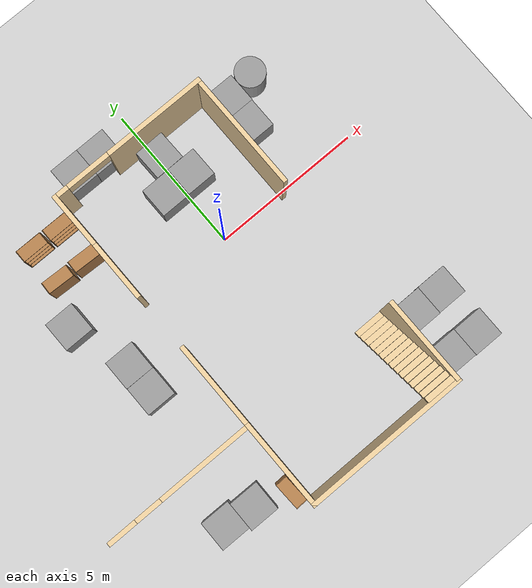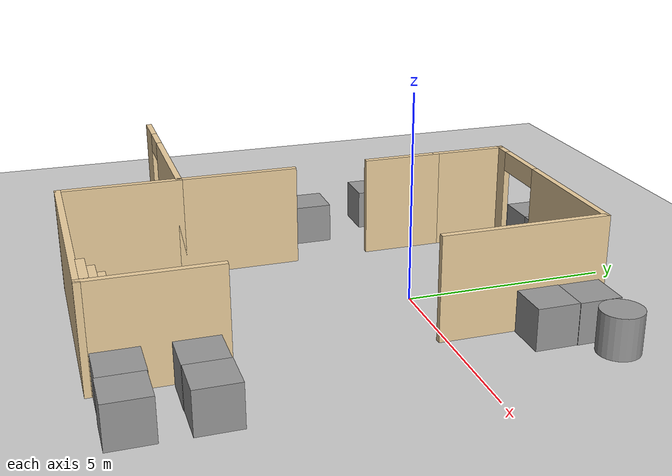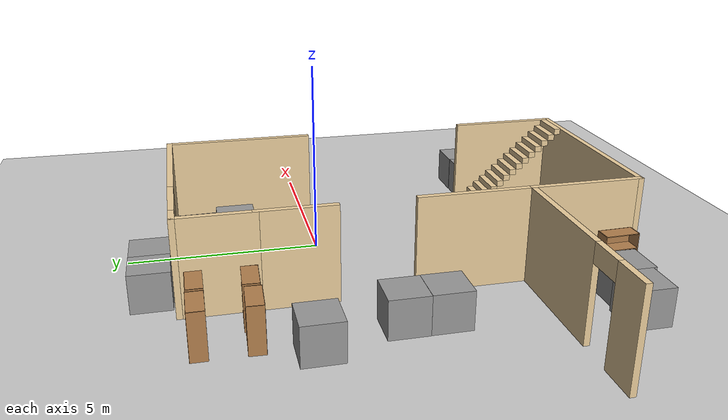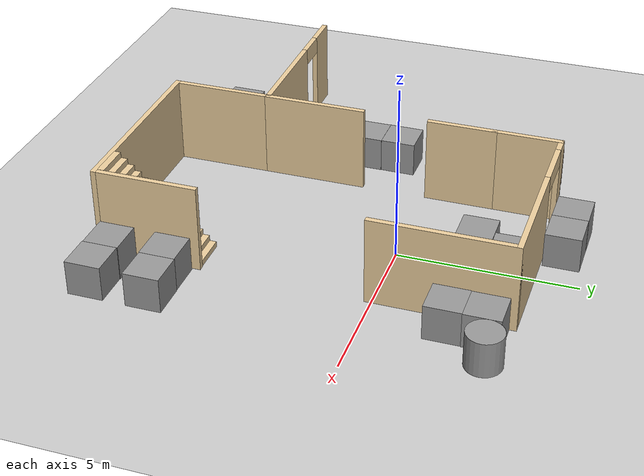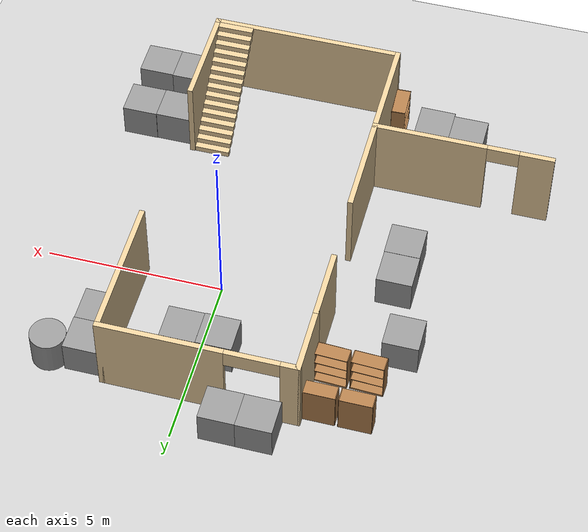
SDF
<sdf version="1.7">
 <world name="default">
  <model name="ground_plane">
   <static>1</static>
   <link name="link">
    <collision name="collision">
     <geometry><plane><normal>0 0 1</normal><size>100 100</size></plane></geometry>
     <surface>
      <contact><collide_bitmask>65535</collide_bitmask></contact>
      <friction><ode><mu>100</mu><mu2>50</mu2></ode></friction>
     </surface>
    </collision>
    <visual name="visual">
     <cast_shadows>0</cast_shadows>
     <geometry><plane><normal>0 0 1</normal><size>100 100</size></plane></geometry>
     <material>
      <script><uri>file://media/materials/scripts/gazebo.material</uri><name>Gazebo/Grey</name></script>
     </material>
    </visual>
   </link>
  </model>
  <model name="Health_2">
   <pose>1.45683 -1.97013 0 0 -0 0</pose>
   <link name="Stairs_1">
    <visual name="Stairs_1_Visual_0">
     <pose>0.20143 -2.88494 0.083333 0 -0 0</pose>
     <geometry><box><size>1 0.190191 0.166667</size></box></geometry>
     <material>
      <script><uri>file://media/materials/scripts/gazebo.material</uri><name>Gazebo/Grey</name></script>
      <ambient>0.921569 0.807843 0.615686 1</ambient>
     </material>
     <meta><layer>0</layer></meta>
    </visual>
    <collision name="Stairs_1_Collision_0">
     <geometry><box><size>1 0.190191 0.166667</size></box></geometry>
     <pose>0.20143 -2.88494 0.083333 0 -0 0</pose>
    </collision>
    <visual name="Stairs_1_Visual_1">
     <pose>0.20143 -3.07513 0.25 0 -0 0</pose>
     <geometry><box><size>1 0.190191 0.166667</size></box></geometry>
     <material>
      <script><uri>file://media/materials/scripts/gazebo.material</uri><name>Gazebo/Grey</name></script>
      <ambient>0.921569 0.807843 0.615686 1</ambient>
     </material>
     <meta><layer>0</layer></meta>
    </visual>
    <collision name="Stairs_1_Collision_1">
     <geometry><box><size>1 0.190191 0.166667</size></box></geometry>
     <pose>0.20143 -3.07513 0.25 0 -0 0</pose>
    </collision>
    <visual name="Stairs_1_Visual_2">
     <pose>0.20143 -3.26532 0.416667 0 -0 0</pose>
     <geometry><box><size>1 0.190191 0.166667</size></box></geometry>
     <material>
      <script><uri>file://media/materials/scripts/gazebo.material</uri><name>Gazebo/Grey</name></script>
      <ambient>0.921569 0.807843 0.615686 1</ambient>
     </material>
     <meta><layer>0</layer></meta>
    </visual>
    <collision name="Stairs_1_Collision_2">
     <geometry><box><size>1 0.190191 0.166667</size></box></geometry>
     <pose>0.20143 -3.26532 0.416667 0 -0 0</pose>
    </collision>
    <visual name="Stairs_1_Visual_3">
     <pose>0.20143 -3.45552 0.583333 0 -0 0</pose>
     <geometry><box><size>1 0.190191 0.166667</size></box></geometry>
     <material>
      <script><uri>file://media/materials/scripts/gazebo.material</uri><name>Gazebo/Grey</name></script>
      <ambient>0.921569 0.807843 0.615686 1</ambient>
     </material>
     <meta><layer>0</layer></meta>
    </visual>
    <collision name="Stairs_1_Collision_3">
     <geometry><box><size>1 0.190191 0.166667</size></box></geometry>
     <pose>0.20143 -3.45552 0.583333 0 -0 0</pose>
    </collision>
    <visual name="Stairs_1_Visual_4">
     <pose>0.20143 -3.64571 0.75 0 -0 0</pose>
     <geometry><box><size>1 0.190191 0.166667</size></box></geometry>
     <material>
      <script><uri>file://media/materials/scripts/gazebo.material</uri><name>Gazebo/Grey</name></script>
      <ambient>0.921569 0.807843 0.615686 1</ambient>
     </material>
     <meta><layer>0</layer></meta>
    </visual>
    <collision name="Stairs_1_Collision_4">
     <geometry><box><size>1 0.190191 0.166667</size></box></geometry>
     <pose>0.20143 -3.64571 0.75 0 -0 0</pose>
    </collision>
    <visual name="Stairs_1_Visual_5">
     <pose>0.20143 -3.8359 0.916667 0 -0 0</pose>
     <geometry><box><size>1 0.190191 0.166667</size></box></geometry>
     <material>
      <script><uri>file://media/materials/scripts/gazebo.material</uri><name>Gazebo/Grey</name></script>
      <ambient>0.921569 0.807843 0.615686 1</ambient>
     </material>
     <meta><layer>0</layer></meta>
    </visual>
    <collision name="Stairs_1_Collision_5">
     <geometry><box><size>1 0.190191 0.166667</size></box></geometry>
     <pose>0.20143 -3.8359 0.916667 0 -0 0</pose>
    </collision>
    <visual name="Stairs_1_Visual_6">
     <pose>0.20143 -4.02609 1.08333 0 -0 0</pose>
     <geometry><box><size>1 0.190191 0.166667</size></box></geometry>
     <material>
      <script><uri>file://media/materials/scripts/gazebo.material</uri><name>Gazebo/Grey</name></script>
      <ambient>0.921569 0.807843 0.615686 1</ambient>
     </material>
     <meta><layer>0</layer></meta>
    </visual>
    <collision name="Stairs_1_Collision_6">
     <geometry><box><size>1 0.190191 0.166667</size></box></geometry>
     <pose>0.20143 -4.02609 1.08333 0 -0 0</pose>
    </collision>
    <visual name="Stairs_1_Visual_7">
     <pose>0.20143 -4.21628 1.25 0 -0 0</pose>
     <geometry><box><size>1 0.190191 0.166667</size></box></geometry>
     <material>
      <script><uri>file://media/materials/scripts/gazebo.material</uri><name>Gazebo/Grey</name></script>
      <ambient>0.921569 0.807843 0.615686 1</ambient>
     </material>
     <meta><layer>0</layer></meta>
    </visual>
    <collision name="Stairs_1_Collision_7">
     <geometry><box><size>1 0.190191 0.166667</size></box></geometry>
     <pose>0.20143 -4.21628 1.25 0 -0 0</pose>
    </collision>
    <visual name="Stairs_1_Visual_8">
     <pose>0.20143 -4.40647 1.41667 0 -0 0</pose>
     <geometry><box><size>1 0.190191 0.166667</size></box></geometry>
     <material>
      <script><uri>file://media/materials/scripts/gazebo.material</uri><name>Gazebo/Grey</name></script>
      <ambient>0.921569 0.807843 0.615686 1</ambient>
     </material>
     <meta><layer>0</layer></meta>
    </visual>
    <collision name="Stairs_1_Collision_8">
     <geometry><box><size>1 0.190191 0.166667</size></box></geometry>
     <pose>0.20143 -4.40647 1.41667 0 -0 0</pose>
    </collision>
    <visual name="Stairs_1_Visual_9">
     <pose>0.20143 -4.59666 1.58333 0 -0 0</pose>
     <geometry><box><size>1 0.190191 0.166667</size></box></geometry>
     <material>
      <script><uri>file://media/materials/scripts/gazebo.material</uri><name>Gazebo/Grey</name></script>
      <ambient>0.921569 0.807843 0.615686 1</ambient>
     </material>
     <meta><layer>0</layer></meta>
    </visual>
    <collision name="Stairs_1_Collision_9">
     <geometry><box><size>1 0.190191 0.166667</size></box></geometry>
     <pose>0.20143 -4.59666 1.58333 0 -0 0</pose>
    </collision>
    <visual name="Stairs_1_Visual_10">
     <pose>0.20143 -4.78685 1.75 0 -0 0</pose>
     <geometry><box><size>1 0.190191 0.166667</size></box></geometry>
     <material>
      <script><uri>file://media/materials/scripts/gazebo.material</uri><name>Gazebo/Grey</name></script>
      <ambient>0.921569 0.807843 0.615686 1</ambient>
     </material>
     <meta><layer>0</layer></meta>
    </visual>
    <collision name="Stairs_1_Collision_10">
     <geometry><box><size>1 0.190191 0.166667</size></box></geometry>
     <pose>0.20143 -4.78685 1.75 0 -0 0</pose>
    </collision>
    <visual name="Stairs_1_Visual_11">
     <pose>0.20143 -4.97705 1.91667 0 -0 0</pose>
     <geometry><box><size>1 0.190191 0.166667</size></box></geometry>
     <material>
      <script><uri>file://media/materials/scripts/gazebo.material</uri><name>Gazebo/Grey</name></script>
      <ambient>0.921569 0.807843 0.615686 1</ambient>
     </material>
     <meta><layer>0</layer></meta>
    </visual>
    <collision name="Stairs_1_Collision_11">
     <geometry><box><size>1 0.190191 0.166667</size></box></geometry>
     <pose>0.20143 -4.97705 1.91667 0 -0 0</pose>
    </collision>
    <visual name="Stairs_1_Visual_12">
     <pose>0.20143 -5.16724 2.08333 0 -0 0</pose>
     <geometry><box><size>1 0.190191 0.166667</size></box></geometry>
     <material>
      <script><uri>file://media/materials/scripts/gazebo.material</uri><name>Gazebo/Grey</name></script>
      <ambient>0.921569 0.807843 0.615686 1</ambient>
     </material>
     <meta><layer>0</layer></meta>
    </visual>
    <collision name="Stairs_1_Collision_12">
     <geometry><box><size>1 0.190191 0.166667</size></box></geometry>
     <pose>0.20143 -5.16724 2.08333 0 -0 0</pose>
    </collision>
    <visual name="Stairs_1_Visual_13">
     <pose>0.20143 -5.35743 2.25 0 -0 0</pose>
     <geometry><box><size>1 0.190191 0.166667</size></box></geometry>
     <material>
      <script><uri>file://media/materials/scripts/gazebo.material</uri><name>Gazebo/Grey</name></script>
      <ambient>0.921569 0.807843 0.615686 1</ambient>
     </material>
     <meta><layer>0</layer></meta>
    </visual>
    <collision name="Stairs_1_Collision_13">
     <geometry><box><size>1 0.190191 0.166667</size></box></geometry>
     <pose>0.20143 -5.35743 2.25 0 -0 0</pose>
    </collision>
    <visual name="Stairs_1_Visual_14">
     <pose>0.20143 -5.54762 2.41667 0 -0 0</pose>
     <geometry><box><size>1 0.190191 0.166667</size></box></geometry>
     <material>
      <script><uri>file://media/materials/scripts/gazebo.material</uri><name>Gazebo/Grey</name></script>
      <ambient>0.921569 0.807843 0.615686 1</ambient>
     </material>
     <meta><layer>0</layer></meta>
    </visual>
    <collision name="Stairs_1_Collision_14">
     <geometry><box><size>1 0.190191 0.166667</size></box></geometry>
     <pose>0.20143 -5.54762 2.41667 0 -0 0</pose>
    </collision>
   </link>
   <link name="Wall_122">
    <collision name="Wall_122_Collision">
     <geometry><box><size>2 0.15 2.5</size></box></geometry>
     <pose>0 0 1.25 0 -0 0</pose>
    </collision>
    <visual name="Wall_122_Visual">
     <pose>0 0 1.25 0 -0 0</pose>
     <geometry><box><size>2 0.15 2.5</size></box></geometry>
     <material>
      <script><uri>file://media/materials/scripts/gazebo.material</uri><name>Gazebo/Grey</name></script>
      <ambient>0.921569 0.807843 0.615686 1</ambient>
     </material>
     <meta><layer>0</layer></meta>
    </visual>
    <pose>-4.59236 4.775 0 0 -0 -1.5708</pose>
   </link>
   <link name="Wall_125">
    <collision name="Wall_125_Collision">
     <geometry><box><size>2 0.15 2.5</size></box></geometry>
     <pose>0 0 1.25 0 -0 0</pose>
    </collision>
    <visual name="Wall_125_Visual">
     <pose>0 0 1.25 0 -0 0</pose>
     <geometry><box><size>2 0.15 2.5</size></box></geometry>
     <material>
      <script><uri>file://media/materials/scripts/gazebo.material</uri><name>Gazebo/Grey</name></script>
      <ambient>0.921569 0.807843 0.615686 1</ambient>
     </material>
     <meta><layer>0</layer></meta>
    </visual>
    <pose>-4.59236 2.925 0 0 -0 -1.5708</pose>
   </link>
   <link name="Wall_127">
    <collision name="Wall_127_Collision">
     <geometry><box><size>3 0.15 2.5</size></box></geometry>
     <pose>0 0 1.25 0 -0 0</pose>
    </collision>
    <visual name="Wall_127_Visual">
     <pose>0 0 1.25 0 -0 0</pose>
     <geometry><box><size>3 0.15 2.5</size></box></geometry>
     <material>
      <script><uri>file://media/materials/scripts/gazebo.material</uri><name>Gazebo/Grey</name></script>
      <ambient>0.921569 0.807843 0.615686 1</ambient>
     </material>
     <meta><layer>0</layer></meta>
    </visual>
    <pose>-4.56923 -1.425 0 0 -0 1.5708</pose>
   </link>
   <link name="Wall_138">
    <pose>-1.91736 5.7 0 0 -0 0</pose>
    <visual name="Wall_138_Visual_0">
     <pose>-2.48035 0 1.25 0 -0 0</pose>
     <geometry><box><size>0.539308 0.15 2.5</size></box></geometry>
     <material>
      <script><uri>file://media/materials/scripts/gazebo.material</uri><name>Gazebo/Grey</name></script>
      <ambient>0.921569 0.807843 0.615686 1</ambient>
     </material>
     <meta><layer>0</layer></meta>
    </visual>
    <collision name="Wall_138_Collision_0">
     <geometry><box><size>0.539308 0.15 2.5</size></box></geometry>
     <pose>-2.48035 0 1.25 0 -0 0</pose>
    </collision>
    <visual name="Wall_138_Visual_1">
     <pose>1.01965 0 1.25 0 -0 0</pose>
     <geometry><box><size>3.46069 0.15 2.5</size></box></geometry>
     <material>
      <script><uri>file://media/materials/scripts/gazebo.material</uri><name>Gazebo/Grey</name></script>
      <ambient>0.921569 0.807843 0.615686 1</ambient>
     </material>
     <meta><layer>0</layer></meta>
    </visual>
    <collision name="Wall_138_Collision_1">
     <geometry><box><size>3.46069 0.15 2.5</size></box></geometry>
     <pose>1.01965 0 1.25 0 -0 0</pose>
    </collision>
    <visual name="Wall_138_Visual_2">
     <pose>-1.46069 0 2.25 0 -0 0</pose>
     <geometry><box><size>1.5 0.15 0.5</size></box></geometry>
     <material>
      <script><uri>file://media/materials/scripts/gazebo.material</uri><name>Gazebo/Grey</name></script>
      <ambient>0.921569 0.807843 0.615686 1</ambient>
     </material>
     <meta><layer>0</layer></meta>
    </visual>
    <collision name="Wall_138_Collision_2">
     <geometry><box><size>1.5 0.15 0.5</size></box></geometry>
     <pose>-1.46069 0 2.25 0 -0 0</pose>
    </collision>
   </link>
   <link name="Wall_140">
    <collision name="Wall_140_Collision">
     <geometry><box><size>4 0.15 2.5</size></box></geometry>
     <pose>0 0 1.25 0 -0 0</pose>
    </collision>
    <visual name="Wall_140_Visual">
     <pose>0 0 1.25 0 -0 0</pose>
     <geometry><box><size>4 0.15 2.5</size></box></geometry>
     <material>
      <script><uri>file://media/materials/scripts/gazebo.material</uri><name>Gazebo/Grey</name></script>
      <ambient>0.921569 0.807843 0.615686 1</ambient>
     </material>
     <meta><layer>0</layer></meta>
    </visual>
    <pose>0.757639 3.775 0 0 -0 -1.5708</pose>
   </link>
   <link name="Wall_32">
    <pose>-7.06923 -2.85 0 0 -0 0</pose>
    <visual name="Wall_32_Visual_0">
     <pose>-2.08046 0 1.25 0 -0 0</pose>
     <geometry><box><size>0.98908 0.15 2.5</size></box></geometry>
     <material>
      <script><uri>file://media/materials/scripts/gazebo.material</uri><name>Gazebo/Grey</name></script>
      <ambient>0.921569 0.807843 0.615686 1</ambient>
     </material>
     <meta><layer>0</layer></meta>
    </visual>
    <collision name="Wall_32_Collision_0">
     <geometry><box><size>0.98908 0.15 2.5</size></box></geometry>
     <pose>-2.08046 0 1.25 0 -0 0</pose>
    </collision>
    <visual name="Wall_32_Visual_1">
     <pose>0.94454 0 1.25 0 -0 0</pose>
     <geometry><box><size>3.26092 0.15 2.5</size></box></geometry>
     <material>
      <script><uri>file://media/materials/scripts/gazebo.material</uri><name>Gazebo/Grey</name></script>
      <ambient>0.921569 0.807843 0.615686 1</ambient>
     </material>
     <meta><layer>0</layer></meta>
    </visual>
    <collision name="Wall_32_Collision_1">
     <geometry><box><size>3.26092 0.15 2.5</size></box></geometry>
     <pose>0.94454 0 1.25 0 -0 0</pose>
    </collision>
    <visual name="Wall_32_Visual_2">
     <pose>-1.13592 0 2.25 0 -0 0</pose>
     <geometry><box><size>0.9 0.15 0.5</size></box></geometry>
     <material>
      <script><uri>file://media/materials/scripts/gazebo.material</uri><name>Gazebo/Grey</name></script>
      <ambient>0.921569 0.807843 0.615686 1</ambient>
     </material>
     <meta><layer>0</layer></meta>
    </visual>
    <collision name="Wall_32_Collision_2">
     <geometry><box><size>0.9 0.15 0.5</size></box></geometry>
     <pose>-1.13592 0 2.25 0 -0 0</pose>
    </collision>
   </link>
   <link name="Wall_33">
    <collision name="Wall_33_Collision">
     <geometry><box><size>3 0.15 2.5</size></box></geometry>
     <pose>0 0 1.25 0 -0 0</pose>
    </collision>
    <visual name="Wall_33_Visual">
     <pose>0 0 1.25 0 -0 0</pose>
     <geometry><box><size>3 0.15 2.5</size></box></geometry>
     <material>
      <script><uri>file://media/materials/scripts/gazebo.material</uri><name>Gazebo/Grey</name></script>
      <ambient>0.921569 0.807843 0.615686 1</ambient>
     </material>
     <meta><layer>0</layer></meta>
    </visual>
    <pose>-4.56923 -4.275 0 0 -0 -1.5708</pose>
   </link>
   <link name="Wall_50">
    <collision name="Wall_50_Collision">
     <geometry><box><size>5.50015 0.15 2.5</size></box></geometry>
     <pose>0 0 1.25 0 -0 0</pose>
    </collision>
    <visual name="Wall_50_Visual">
     <pose>0 0 1.25 0 -0 0</pose>
     <geometry><box><size>5.50015 0.15 2.5</size></box></geometry>
     <material>
      <script><uri>file://media/materials/scripts/gazebo.material</uri><name>Gazebo/Grey</name></script>
      <ambient>0.921569 0.807843 0.615686 1</ambient>
     </material>
     <meta><layer>0</layer></meta>
    </visual>
    <pose>-1.89423 -5.7 0 0 -0 0</pose>
   </link>
   <link name="Wall_51">
    <collision name="Wall_51_Collision">
     <geometry><box><size>3 0.15 2.5</size></box></geometry>
     <pose>0 0 1.25 0 -0 0</pose>
    </collision>
    <visual name="Wall_51_Visual">
     <pose>0 0 1.25 0 -0 0</pose>
     <geometry><box><size>3 0.15 2.5</size></box></geometry>
     <material>
      <script><uri>file://media/materials/scripts/gazebo.material</uri><name>Gazebo/Grey</name></script>
      <ambient>0.921569 0.807843 0.615686 1</ambient>
     </material>
     <meta><layer>0</layer></meta>
    </visual>
    <pose>0.78077 -4.275 0 0 -0 1.5708</pose>
   </link>
   <static>1</static>
  </model>
  <model name="bookshelf">
   <static>1</static>
   <link name="link">
    <inertial><mass>1</mass></inertial>
    <collision name="back">
     <pose>0 0.005 0.6 0 -0 0</pose>
     <geometry><box><size>0.9 0.01 1.2</size></box></geometry>
    </collision>
    <visual name="visual1">
     <pose>0 0.005 0.6 0 -0 0</pose>
     <geometry><box><size>0.9 0.01 1.2</size></box></geometry>
     <material>
      <script><uri>file://media/materials/scripts/gazebo.material</uri><name>Gazebo/Wood</name></script>
     </material>
    </visual>
    <collision name="left_side">
     <pose>0.45 -0.195 0.6 0 -0 0</pose>
     <geometry><box><size>0.02 0.4 1.2</size></box></geometry>
    </collision>
    <visual name="visual2">
     <pose>0.45 -0.195 0.6 0 -0 0</pose>
     <geometry><box><size>0.02 0.4 1.2</size></box></geometry>
     <material>
      <script><uri>file://media/materials/scripts/gazebo.material</uri><name>Gazebo/Wood</name></script>
     </material>
    </visual>
    <collision name="right_side">
     <pose>-0.45 -0.195 0.6 0 -0 0</pose>
     <geometry><box><size>0.02 0.4 1.2</size></box></geometry>
    </collision>
    <visual name="visual3">
     <pose>-0.45 -0.195 0.6 0 -0 0</pose>
     <geometry><box><size>0.02 0.4 1.2</size></box></geometry>
     <material>
      <script><uri>file://media/materials/scripts/gazebo.material</uri><name>Gazebo/Wood</name></script>
     </material>
    </visual>
    <collision name="bottom">
     <pose>0 -0.195 0.03 0 -0 0</pose>
     <geometry><box><size>0.88 0.4 0.06</size></box></geometry>
    </collision>
    <visual name="visual4">
     <pose>0 -0.195 0.03 0 -0 0</pose>
     <geometry><box><size>0.88 0.4 0.06</size></box></geometry>
     <material>
      <script><uri>file://media/materials/scripts/gazebo.material</uri><name>Gazebo/Wood</name></script>
     </material>
    </visual>
    <collision name="top">
     <pose>0 -0.195 1.19 0 -0 0</pose>
     <geometry><box><size>0.88 0.4 0.02</size></box></geometry>
    </collision>
    <visual name="visual5">
     <pose>0 -0.195 1.19 0 -0 0</pose>
     <geometry><box><size>0.88 0.4 0.02</size></box></geometry>
     <material>
      <script><uri>file://media/materials/scripts/gazebo.material</uri><name>Gazebo/Wood</name></script>
     </material>
    </visual>
    <collision name="low_shelf">
     <pose>0 -0.195 0.43 0 -0 0</pose>
     <geometry><box><size>0.88 0.4 0.02</size></box></geometry>
    </collision>
    <visual name="visual6">
     <pose>0 -0.195 0.43 0 -0 0</pose>
     <geometry><box><size>0.88 0.4 0.02</size></box></geometry>
     <material>
      <script><uri>file://media/materials/scripts/gazebo.material</uri><name>Gazebo/Wood</name></script>
     </material>
    </visual>
    <collision name="high_shelf">
     <pose>0 -0.195 0.8 0 -0 0</pose>
     <geometry><box><size>0.88 0.4 0.02</size></box></geometry>
    </collision>
    <visual name="visual7">
     <pose>0 -0.195 0.8 0 -0 0</pose>
     <geometry><box><size>0.88 0.4 0.02</size></box></geometry>
     <material>
      <script><uri>file://media/materials/scripts/gazebo.material</uri><name>Gazebo/Wood</name></script>
     </material>
    </visual>
   </link>
   <pose>-3.62888 3.55135 0 0 -0 0</pose>
  </model>
  <model name="bookshelf_0">
   <static>1</static>
   <link name="link">
    <inertial><mass>1</mass></inertial>
    <collision name="back">
     <pose>0 0.005 0.6 0 -0 0</pose>
     <geometry><box><size>0.9 0.01 1.2</size></box></geometry>
    </collision>
    <visual name="visual1">
     <pose>0 0.005 0.6 0 -0 0</pose>
     <geometry><box><size>0.9 0.01 1.2</size></box></geometry>
     <material>
      <script><uri>file://media/materials/scripts/gazebo.material</uri><name>Gazebo/Wood</name></script>
     </material>
    </visual>
    <collision name="left_side">
     <pose>0.45 -0.195 0.6 0 -0 0</pose>
     <geometry><box><size>0.02 0.4 1.2</size></box></geometry>
    </collision>
    <visual name="visual2">
     <pose>0.45 -0.195 0.6 0 -0 0</pose>
     <geometry><box><size>0.02 0.4 1.2</size></box></geometry>
     <material>
      <script><uri>file://media/materials/scripts/gazebo.material</uri><name>Gazebo/Wood</name></script>
     </material>
    </visual>
    <collision name="right_side">
     <pose>-0.45 -0.195 0.6 0 -0 0</pose>
     <geometry><box><size>0.02 0.4 1.2</size></box></geometry>
    </collision>
    <visual name="visual3">
     <pose>-0.45 -0.195 0.6 0 -0 0</pose>
     <geometry><box><size>0.02 0.4 1.2</size></box></geometry>
     <material>
      <script><uri>file://media/materials/scripts/gazebo.material</uri><name>Gazebo/Wood</name></script>
     </material>
    </visual>
    <collision name="bottom">
     <pose>0 -0.195 0.03 0 -0 0</pose>
     <geometry><box><size>0.88 0.4 0.06</size></box></geometry>
    </collision>
    <visual name="visual4">
     <pose>0 -0.195 0.03 0 -0 0</pose>
     <geometry><box><size>0.88 0.4 0.06</size></box></geometry>
     <material>
      <script><uri>file://media/materials/scripts/gazebo.material</uri><name>Gazebo/Wood</name></script>
     </material>
    </visual>
    <collision name="top">
     <pose>0 -0.195 1.19 0 -0 0</pose>
     <geometry><box><size>0.88 0.4 0.02</size></box></geometry>
    </collision>
    <visual name="visual5">
     <pose>0 -0.195 1.19 0 -0 0</pose>
     <geometry><box><size>0.88 0.4 0.02</size></box></geometry>
     <material>
      <script><uri>file://media/materials/scripts/gazebo.material</uri><name>Gazebo/Wood</name></script>
     </material>
    </visual>
    <collision name="low_shelf">
     <pose>0 -0.195 0.43 0 -0 0</pose>
     <geometry><box><size>0.88 0.4 0.02</size></box></geometry>
    </collision>
    <visual name="visual6">
     <pose>0 -0.195 0.43 0 -0 0</pose>
     <geometry><box><size>0.88 0.4 0.02</size></box></geometry>
     <material>
      <script><uri>file://media/materials/scripts/gazebo.material</uri><name>Gazebo/Wood</name></script>
     </material>
    </visual>
    <collision name="high_shelf">
     <pose>0 -0.195 0.8 0 -0 0</pose>
     <geometry><box><size>0.88 0.4 0.02</size></box></geometry>
    </collision>
    <visual name="visual7">
     <pose>0 -0.195 0.8 0 -0 0</pose>
     <geometry><box><size>0.88 0.4 0.02</size></box></geometry>
     <material>
      <script><uri>file://media/materials/scripts/gazebo.material</uri><name>Gazebo/Wood</name></script>
     </material>
    </visual>
   </link>
   <pose>-4.62225 3.55775 0 0 -0 0</pose>
  </model>
  <model name="bookshelf_2">
   <static>1</static>
   <link name="link">
    <inertial><mass>1</mass></inertial>
    <collision name="back">
     <pose>0 0.005 0.6 0 -0 0</pose>
     <geometry><box><size>0.9 0.01 1.2</size></box></geometry>
    </collision>
    <visual name="visual1">
     <pose>0 0.005 0.6 0 -0 0</pose>
     <geometry><box><size>0.9 0.01 1.2</size></box></geometry>
     <material>
      <script><uri>file://media/materials/scripts/gazebo.material</uri><name>Gazebo/Wood</name></script>
     </material>
    </visual>
    <collision name="left_side">
     <pose>0.45 -0.195 0.6 0 -0 0</pose>
     <geometry><box><size>0.02 0.4 1.2</size></box></geometry>
    </collision>
    <visual name="visual2">
     <pose>0.45 -0.195 0.6 0 -0 0</pose>
     <geometry><box><size>0.02 0.4 1.2</size></box></geometry>
     <material>
      <script><uri>file://media/materials/scripts/gazebo.material</uri><name>Gazebo/Wood</name></script>
     </material>
    </visual>
    <collision name="right_side">
     <pose>-0.45 -0.195 0.6 0 -0 0</pose>
     <geometry><box><size>0.02 0.4 1.2</size></box></geometry>
    </collision>
    <visual name="visual3">
     <pose>-0.45 -0.195 0.6 0 -0 0</pose>
     <geometry><box><size>0.02 0.4 1.2</size></box></geometry>
     <material>
      <script><uri>file://media/materials/scripts/gazebo.material</uri><name>Gazebo/Wood</name></script>
     </material>
    </visual>
    <collision name="bottom">
     <pose>0 -0.195 0.03 0 -0 0</pose>
     <geometry><box><size>0.88 0.4 0.06</size></box></geometry>
    </collision>
    <visual name="visual4">
     <pose>0 -0.195 0.03 0 -0 0</pose>
     <geometry><box><size>0.88 0.4 0.06</size></box></geometry>
     <material>
      <script><uri>file://media/materials/scripts/gazebo.material</uri><name>Gazebo/Wood</name></script>
     </material>
    </visual>
    <collision name="top">
     <pose>0 -0.195 1.19 0 -0 0</pose>
     <geometry><box><size>0.88 0.4 0.02</size></box></geometry>
    </collision>
    <visual name="visual5">
     <pose>0 -0.195 1.19 0 -0 0</pose>
     <geometry><box><size>0.88 0.4 0.02</size></box></geometry>
     <material>
      <script><uri>file://media/materials/scripts/gazebo.material</uri><name>Gazebo/Wood</name></script>
     </material>
    </visual>
    <collision name="low_shelf">
     <pose>0 -0.195 0.43 0 -0 0</pose>
     <geometry><box><size>0.88 0.4 0.02</size></box></geometry>
    </collision>
    <visual name="visual6">
     <pose>0 -0.195 0.43 0 -0 0</pose>
     <geometry><box><size>0.88 0.4 0.02</size></box></geometry>
     <material>
      <script><uri>file://media/materials/scripts/gazebo.material</uri><name>Gazebo/Wood</name></script>
     </material>
    </visual>
    <collision name="high_shelf">
     <pose>0 -0.195 0.8 0 -0 0</pose>
     <geometry><box><size>0.88 0.4 0.02</size></box></geometry>
    </collision>
    <visual name="visual7">
     <pose>0 -0.195 0.8 0 -0 0</pose>
     <geometry><box><size>0.88 0.4 0.02</size></box></geometry>
     <material>
      <script><uri>file://media/materials/scripts/gazebo.material</uri><name>Gazebo/Wood</name></script>
     </material>
    </visual>
   </link>
   <pose>-3.66454 1.91785 0 0 -0 3.1</pose>
  </model>
  <model name="bookshelf_3">
   <static>1</static>
   <link name="link">
    <inertial><mass>1</mass></inertial>
    <collision name="back">
     <pose>0 0.005 0.6 0 -0 0</pose>
     <geometry><box><size>0.9 0.01 1.2</size></box></geometry>
    </collision>
    <visual name="visual1">
     <pose>0 0.005 0.6 0 -0 0</pose>
     <geometry><box><size>0.9 0.01 1.2</size></box></geometry>
     <material>
      <script><uri>file://media/materials/scripts/gazebo.material</uri><name>Gazebo/Wood</name></script>
     </material>
    </visual>
    <collision name="left_side">
     <pose>0.45 -0.195 0.6 0 -0 0</pose>
     <geometry><box><size>0.02 0.4 1.2</size></box></geometry>
    </collision>
    <visual name="visual2">
     <pose>0.45 -0.195 0.6 0 -0 0</pose>
     <geometry><box><size>0.02 0.4 1.2</size></box></geometry>
     <material>
      <script><uri>file://media/materials/scripts/gazebo.material</uri><name>Gazebo/Wood</name></script>
     </material>
    </visual>
    <collision name="right_side">
     <pose>-0.45 -0.195 0.6 0 -0 0</pose>
     <geometry><box><size>0.02 0.4 1.2</size></box></geometry>
    </collision>
    <visual name="visual3">
     <pose>-0.45 -0.195 0.6 0 -0 0</pose>
     <geometry><box><size>0.02 0.4 1.2</size></box></geometry>
     <material>
      <script><uri>file://media/materials/scripts/gazebo.material</uri><name>Gazebo/Wood</name></script>
     </material>
    </visual>
    <collision name="bottom">
     <pose>0 -0.195 0.03 0 -0 0</pose>
     <geometry><box><size>0.88 0.4 0.06</size></box></geometry>
    </collision>
    <visual name="visual4">
     <pose>0 -0.195 0.03 0 -0 0</pose>
     <geometry><box><size>0.88 0.4 0.06</size></box></geometry>
     <material>
      <script><uri>file://media/materials/scripts/gazebo.material</uri><name>Gazebo/Wood</name></script>
     </material>
    </visual>
    <collision name="top">
     <pose>0 -0.195 1.19 0 -0 0</pose>
     <geometry><box><size>0.88 0.4 0.02</size></box></geometry>
    </collision>
    <visual name="visual5">
     <pose>0 -0.195 1.19 0 -0 0</pose>
     <geometry><box><size>0.88 0.4 0.02</size></box></geometry>
     <material>
      <script><uri>file://media/materials/scripts/gazebo.material</uri><name>Gazebo/Wood</name></script>
     </material>
    </visual>
    <collision name="low_shelf">
     <pose>0 -0.195 0.43 0 -0 0</pose>
     <geometry><box><size>0.88 0.4 0.02</size></box></geometry>
    </collision>
    <visual name="visual6">
     <pose>0 -0.195 0.43 0 -0 0</pose>
     <geometry><box><size>0.88 0.4 0.02</size></box></geometry>
     <material>
      <script><uri>file://media/materials/scripts/gazebo.material</uri><name>Gazebo/Wood</name></script>
     </material>
    </visual>
    <collision name="high_shelf">
     <pose>0 -0.195 0.8 0 -0 0</pose>
     <geometry><box><size>0.88 0.4 0.02</size></box></geometry>
    </collision>
    <visual name="visual7">
     <pose>0 -0.195 0.8 0 -0 0</pose>
     <geometry><box><size>0.88 0.4 0.02</size></box></geometry>
     <material>
      <script><uri>file://media/materials/scripts/gazebo.material</uri><name>Gazebo/Wood</name></script>
     </material>
    </visual>
   </link>
   <pose>-4.65456 1.92895 0 0 -0 3.1</pose>
  </model>
  <model name="bookshelf_6">
   <static>1</static>
   <link name="link">
    <inertial><mass>1</mass></inertial>
    <collision name="back">
     <pose>0 0.005 0.6 0 -0 0</pose>
     <geometry><box><size>0.9 0.01 1.2</size></box></geometry>
    </collision>
    <visual name="visual1">
     <pose>0 0.005 0.6 0 -0 0</pose>
     <geometry><box><size>0.9 0.01 1.2</size></box></geometry>
     <material>
      <script><uri>file://media/materials/scripts/gazebo.material</uri><name>Gazebo/Wood</name></script>
     </material>
    </visual>
    <collision name="left_side">
     <pose>0.45 -0.195 0.6 0 -0 0</pose>
     <geometry><box><size>0.02 0.4 1.2</size></box></geometry>
    </collision>
    <visual name="visual2">
     <pose>0.45 -0.195 0.6 0 -0 0</pose>
     <geometry><box><size>0.02 0.4 1.2</size></box></geometry>
     <material>
      <script><uri>file://media/materials/scripts/gazebo.material</uri><name>Gazebo/Wood</name></script>
     </material>
    </visual>
    <collision name="right_side">
     <pose>-0.45 -0.195 0.6 0 -0 0</pose>
     <geometry><box><size>0.02 0.4 1.2</size></box></geometry>
    </collision>
    <visual name="visual3">
     <pose>-0.45 -0.195 0.6 0 -0 0</pose>
     <geometry><box><size>0.02 0.4 1.2</size></box></geometry>
     <material>
      <script><uri>file://media/materials/scripts/gazebo.material</uri><name>Gazebo/Wood</name></script>
     </material>
    </visual>
    <collision name="bottom">
     <pose>0 -0.195 0.03 0 -0 0</pose>
     <geometry><box><size>0.88 0.4 0.06</size></box></geometry>
    </collision>
    <visual name="visual4">
     <pose>0 -0.195 0.03 0 -0 0</pose>
     <geometry><box><size>0.88 0.4 0.06</size></box></geometry>
     <material>
      <script><uri>file://media/materials/scripts/gazebo.material</uri><name>Gazebo/Wood</name></script>
     </material>
    </visual>
    <collision name="top">
     <pose>0 -0.195 1.19 0 -0 0</pose>
     <geometry><box><size>0.88 0.4 0.02</size></box></geometry>
    </collision>
    <visual name="visual5">
     <pose>0 -0.195 1.19 0 -0 0</pose>
     <geometry><box><size>0.88 0.4 0.02</size></box></geometry>
     <material>
      <script><uri>file://media/materials/scripts/gazebo.material</uri><name>Gazebo/Wood</name></script>
     </material>
    </visual>
    <collision name="low_shelf">
     <pose>0 -0.195 0.43 0 -0 0</pose>
     <geometry><box><size>0.88 0.4 0.02</size></box></geometry>
    </collision>
    <visual name="visual6">
     <pose>0 -0.195 0.43 0 -0 0</pose>
     <geometry><box><size>0.88 0.4 0.02</size></box></geometry>
     <material>
      <script><uri>file://media/materials/scripts/gazebo.material</uri><name>Gazebo/Wood</name></script>
     </material>
    </visual>
    <collision name="high_shelf">
     <pose>0 -0.195 0.8 0 -0 0</pose>
     <geometry><box><size>0.88 0.4 0.02</size></box></geometry>
    </collision>
    <visual name="visual7">
     <pose>0 -0.195 0.8 0 -0 0</pose>
     <geometry><box><size>0.88 0.4 0.02</size></box></geometry>
     <material>
      <script><uri>file://media/materials/scripts/gazebo.material</uri><name>Gazebo/Wood</name></script>
     </material>
    </visual>
   </link>
   <pose>-3.21391 -7.08403 0 0 0 -1.53736</pose>
  </model>
  <model name="unit_box">
   <pose>0.068729 3.11117 0.5 0 -0 0.017537</pose>
   <link name="link">
    <inertial>
     <mass>1</mass>
     <inertia>
      <ixx>0.166667</ixx>
      <ixy>0</ixy>
      <ixz>0</ixz>
      <iyy>0.166667</iyy>
      <iyz>0</iyz>
      <izz>0.166667</izz>
     </inertia>
    </inertial>
    <collision name="collision"><geometry><box><size>1 1 1</size></box></geometry></collision>
    <visual name="visual">
     <geometry><box><size>1 1 1</size></box></geometry>
     <material>
      <script><name>Gazebo/Grey</name><uri>file://media/materials/scripts/gazebo.material</uri></script>
     </material>
    </visual>
   </link>
  </model>
  <model name="unit_box_0">
   <pose>-0.524753 2.09511 0.5 0 -0 0.003881</pose>
   <link name="link">
    <inertial>
     <mass>1</mass>
     <inertia>
      <ixx>0.166667</ixx>
      <ixy>0</ixy>
      <ixz>0</ixz>
      <iyy>0.166667</iyy>
      <iyz>0</iyz>
      <izz>0.166667</izz>
     </inertia>
    </inertial>
    <collision name="collision"><geometry><box><size>1 1 1</size></box></geometry></collision>
    <visual name="visual">
     <geometry><box><size>1 1 1</size></box></geometry>
     <material>
      <script><name>Gazebo/Grey</name><uri>file://media/materials/scripts/gazebo.material</uri></script>
     </material>
    </visual>
   </link>
  </model>
  <model name="unit_box_1">
   <pose>0.47523 2.11108 0.5 0 -0 0.003871</pose>
   <link name="link">
    <inertial>
     <mass>1</mass>
     <inertia>
      <ixx>0.166667</ixx>
      <ixy>0</ixy>
      <ixz>0</ixz>
      <iyy>0.166667</iyy>
      <iyz>0</iyz>
      <izz>0.166667</izz>
     </inertia>
    </inertial>
    <collision name="collision"><geometry><box><size>1 1 1</size></box></geometry></collision>
    <visual name="visual">
     <geometry><box><size>1 1 1</size></box></geometry>
     <material>
      <script><name>Gazebo/Grey</name><uri>file://media/materials/scripts/gazebo.material</uri></script>
     </material>
    </visual>
   </link>
  </model>
  <model name="unit_box_2">
   <pose>-5.29885 0.845615 0.5 0 -0 0</pose>
   <link name="link">
    <inertial>
     <mass>1</mass>
     <inertia>
      <ixx>0.166667</ixx>
      <ixy>0</ixy>
      <ixz>0</ixz>
      <iyy>0.166667</iyy>
      <iyz>0</iyz>
      <izz>0.166667</izz>
     </inertia>
    </inertial>
    <collision name="collision"><geometry><box><size>1 1 1</size></box></geometry></collision>
    <visual name="visual">
     <geometry><box><size>1 1 1</size></box></geometry>
     <material>
      <script><name>Gazebo/Grey</name><uri>file://media/materials/scripts/gazebo.material</uri></script>
     </material>
    </visual>
   </link>
  </model>
  <model name="unit_box_4">
   <pose>-4.6643 -1.18564 0.5 0 0 -0.003724</pose>
   <link name="link">
    <inertial>
     <mass>1</mass>
     <inertia>
      <ixx>0.166667</ixx>
      <ixy>0</ixy>
      <ixz>0</ixz>
      <iyy>0.166667</iyy>
      <iyz>0</iyz>
      <izz>0.166667</izz>
     </inertia>
    </inertial>
    <collision name="collision"><geometry><box><size>1 1 1</size></box></geometry></collision>
    <visual name="visual">
     <geometry><box><size>1 1 1</size></box></geometry>
     <material>
      <script><name>Gazebo/Grey</name><uri>file://media/materials/scripts/gazebo.material</uri></script>
     </material>
    </visual>
   </link>
  </model>
  <model name="unit_box_6">
   <pose>-4.65818 -2.18719 0.5 -0 -0 -0.000702</pose>
   <link name="link">
    <inertial>
     <mass>1</mass>
     <inertia>
      <ixx>0.166667</ixx>
      <ixy>0</ixy>
      <ixz>0</ixz>
      <iyy>0.166667</iyy>
      <iyz>0</iyz>
      <izz>0.166667</izz>
     </inertia>
    </inertial>
    <collision name="collision"><geometry><box><size>1 1 1</size></box></geometry></collision>
    <visual name="visual">
     <geometry><box><size>1 1 1</size></box></geometry>
     <material>
      <script><name>Gazebo/Grey</name><uri>file://media/materials/scripts/gazebo.material</uri></script>
     </material>
    </visual>
   </link>
  </model>
  <model name="unit_box_18">
   <pose>-5.50075 -6.58852 0.5 0 0 -0.007026</pose>
   <link name="link">
    <inertial>
     <mass>1</mass>
     <inertia>
      <ixx>0.166667</ixx>
      <ixy>0</ixy>
      <ixz>0</ixz>
      <iyy>0.166667</iyy>
      <iyz>0</iyz>
      <izz>0.166667</izz>
     </inertia>
    </inertial>
    <collision name="collision"><geometry><box><size>1 1 1</size></box></geometry></collision>
    <visual name="visual">
     <geometry><box><size>1 1 1</size></box></geometry>
     <material>
      <script><name>Gazebo/Grey</name><uri>file://media/materials/scripts/gazebo.material</uri></script>
     </material>
    </visual>
   </link>
  </model>
  <model name="unit_box_19">
   <pose>-4.50148 -6.69898 0.5 0 0 -0.007022</pose>
   <link name="link">
    <inertial>
     <mass>1</mass>
     <inertia>
      <ixx>0.166667</ixx>
      <ixy>0</ixy>
      <ixz>0</ixz>
      <iyy>0.166667</iyy>
      <iyz>0</iyz>
      <izz>0.166667</izz>
     </inertia>
    </inertial>
    <collision name="collision"><geometry><box><size>1 1 1</size></box></geometry></collision>
    <visual name="visual">
     <geometry><box><size>1 1 1</size></box></geometry>
     <material>
      <script><name>Gazebo/Grey</name><uri>file://media/materials/scripts/gazebo.material</uri></script>
     </material>
    </visual>
   </link>
  </model>
  <model name="unit_box_20">
   <pose>2.82387 3.11877 0.5 0 -0 0</pose>
   <link name="link">
    <inertial>
     <mass>1</mass>
     <inertia>
      <ixx>0.166667</ixx>
      <ixy>0</ixy>
      <ixz>0</ixz>
      <iyy>0.166667</iyy>
      <iyz>0</iyz>
      <izz>0.166667</izz>
     </inertia>
    </inertial>
    <collision name="collision"><geometry><box><size>1 1 1</size></box></geometry></collision>
    <visual name="visual">
     <geometry><box><size>1 1 1</size></box></geometry>
     <material>
      <script><name>Gazebo/Grey</name><uri>file://media/materials/scripts/gazebo.material</uri></script>
     </material>
    </visual>
   </link>
  </model>
  <model name="unit_box_21">
   <pose>2.80904 2.11876 0.5 0 -0 0</pose>
   <link name="link">
    <inertial>
     <mass>1</mass>
     <inertia>
      <ixx>0.166667</ixx>
      <ixy>0</ixy>
      <ixz>0</ixz>
      <iyy>0.166667</iyy>
      <iyz>0</iyz>
      <izz>0.166667</izz>
     </inertia>
    </inertial>
    <collision name="collision"><geometry><box><size>1 1 1</size></box></geometry></collision>
    <visual name="visual">
     <geometry><box><size>1 1 1</size></box></geometry>
     <material>
      <script><name>Gazebo/Grey</name><uri>file://media/materials/scripts/gazebo.material</uri></script>
     </material>
    </visual>
   </link>
  </model>
  <model name="unit_cylinder_0">
   <pose>3.824 3.31462 0.5 0 0 -7e-06</pose>
   <link name="link">
    <inertial>
     <mass>1</mass>
     <inertia><ixx>0.145833</ixx><ixy>0</ixy><ixz>0</ixz><iyy>0.145833</iyy><iyz>0</iyz><izz>0.125</izz></inertia>
    </inertial>
    <collision name="collision">
     <geometry><cylinder><radius>0.5</radius><length>1</length></cylinder></geometry>
    </collision>
    <visual name="visual">
     <geometry><cylinder><radius>0.5</radius><length>1</length></cylinder></geometry>
     <material>
      <script><name>Gazebo/Grey</name><uri>file://media/materials/scripts/gazebo.material</uri></script>
     </material>
    </visual>
   </link>
  </model>
  <model name="unit_box_35">
   <pose>2.87084 -5.46432 0.5 0 -0 6.1e-05</pose>
   <link name="link">
    <inertial>
     <mass>1</mass>
     <inertia>
      <ixx>0.166667</ixx>
      <ixy>0</ixy>
      <ixz>0</ixz>
      <iyy>0.166667</iyy>
      <iyz>0</iyz>
      <izz>0.166667</izz>
     </inertia>
    </inertial>
    <collision name="collision"><geometry><box><size>1 1 1</size></box></geometry></collision>
    <visual name="visual">
     <geometry><box><size>1 1 1</size></box></geometry>
     <material>
      <script><name>Gazebo/Grey</name><uri>file://media/materials/scripts/gazebo.material</uri></script>
     </material>
    </visual>
   </link>
  </model>
  <model name="unit_box_36">
   <pose>3.87084 -5.45287 0.5 0 -0 6.1e-05</pose>
   <link name="link">
    <inertial>
     <mass>1</mass>
     <inertia>
      <ixx>0.166667</ixx>
      <ixy>0</ixy>
      <ixz>0</ixz>
      <iyy>0.166667</iyy>
      <iyz>0</iyz>
      <izz>0.166667</izz>
     </inertia>
    </inertial>
    <collision name="collision"><geometry><box><size>1 1 1</size></box></geometry></collision>
    <visual name="visual">
     <geometry><box><size>1 1 1</size></box></geometry>
     <material>
      <script><name>Gazebo/Grey</name><uri>file://media/materials/scripts/gazebo.material</uri></script>
     </material>
    </visual>
   </link>
  </model>
  <model name="unit_box_37">
   <pose>2.86208 -7.07961 0.5 0 -0 3e-06</pose>
   <link name="link">
    <inertial>
     <mass>1</mass>
     <inertia>
      <ixx>0.166667</ixx>
      <ixy>0</ixy>
      <ixz>0</ixz>
      <iyy>0.166667</iyy>
      <iyz>0</iyz>
      <izz>0.166667</izz>
     </inertia>
    </inertial>
    <collision name="collision"><geometry><box><size>1 1 1</size></box></geometry></collision>
    <visual name="visual">
     <geometry><box><size>1 1 1</size></box></geometry>
     <material>
      <script><name>Gazebo/Grey</name><uri>file://media/materials/scripts/gazebo.material</uri></script>
     </material>
    </visual>
   </link>
  </model>
  <model name="unit_box_38">
   <pose>3.86211 -7.09513 0.5 -0 -0 -5e-06</pose>
   <link name="link">
    <inertial>
     <mass>1</mass>
     <inertia>
      <ixx>0.166667</ixx>
      <ixy>0</ixy>
      <ixz>0</ixz>
      <iyy>0.166667</iyy>
      <iyz>0</iyz>
      <izz>0.166667</izz>
     </inertia>
    </inertial>
    <collision name="collision"><geometry><box><size>1 1 1</size></box></geometry></collision>
    <visual name="visual">
     <geometry><box><size>1 1 1</size></box></geometry>
     <material>
      <script><name>Gazebo/Grey</name><uri>file://media/materials/scripts/gazebo.material</uri></script>
     </material>
    </visual>
   </link>
  </model>
  <model name="unit_box_26">
   <pose>-2.24227 4.35437 0.5 0 0 -2e-05</pose>
   <link name="link">
    <inertial>
     <mass>1</mass>
     <inertia>
      <ixx>0.166667</ixx>
      <ixy>0</ixy>
      <ixz>0</ixz>
      <iyy>0.166667</iyy>
      <iyz>0</iyz>
      <izz>0.166667</izz>
     </inertia>
    </inertial>
    <collision name="collision"><geometry><box><size>1 1 1</size></box></geometry></collision>
    <visual name="visual">
     <geometry><box><size>1 1 1</size></box></geometry>
     <material>
      <script><name>Gazebo/Grey</name><uri>file://media/materials/scripts/gazebo.material</uri></script>
     </material>
    </visual>
   </link>
  </model>
  <model name="unit_box_39">
   <pose>-1.24227 4.35085 0.499995 1e-05 -0 -2.1e-05</pose>
   <link name="link">
    <inertial>
     <mass>1</mass>
     <inertia>
      <ixx>0.166667</ixx>
      <ixy>0</ixy>
      <ixz>0</ixz>
      <iyy>0.166667</iyy>
      <iyz>0</iyz>
      <izz>0.166667</izz>
     </inertia>
    </inertial>
    <collision name="collision"><geometry><box><size>1 1 1</size></box></geometry></collision>
    <visual name="visual">
     <geometry><box><size>1 1 1</size></box></geometry>
     <material>
      <script><name>Gazebo/Grey</name><uri>file://media/materials/scripts/gazebo.material</uri></script>
     </material>
    </visual>
   </link>
  </model>
 </world>
</sdf>
